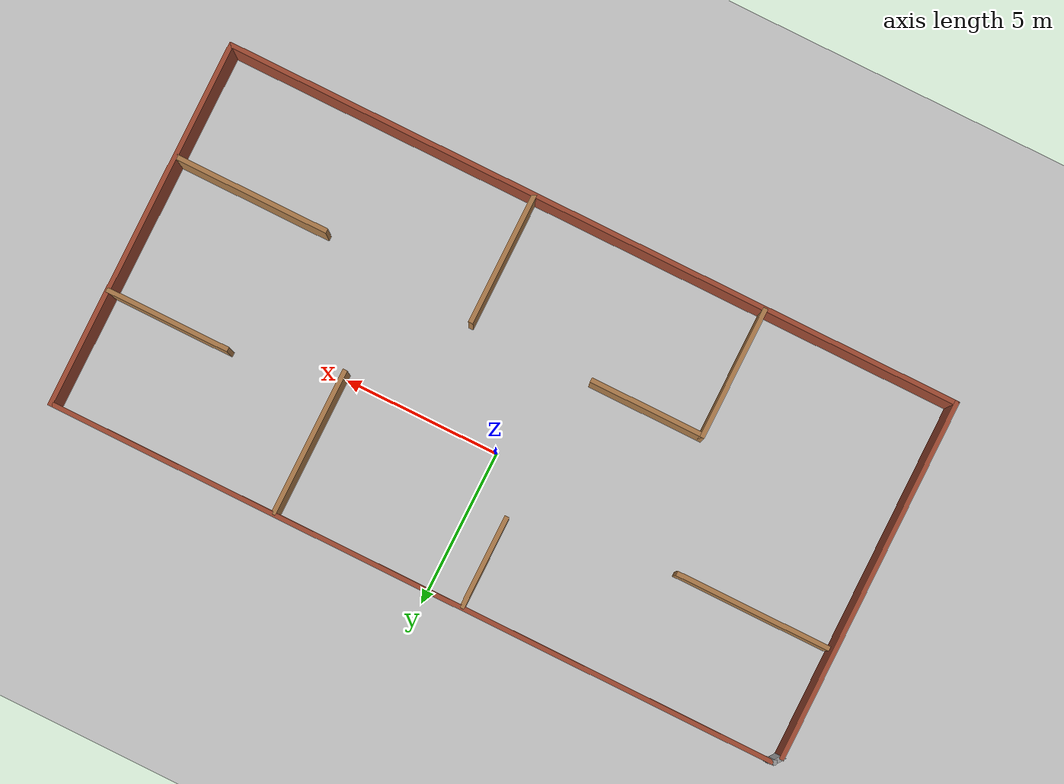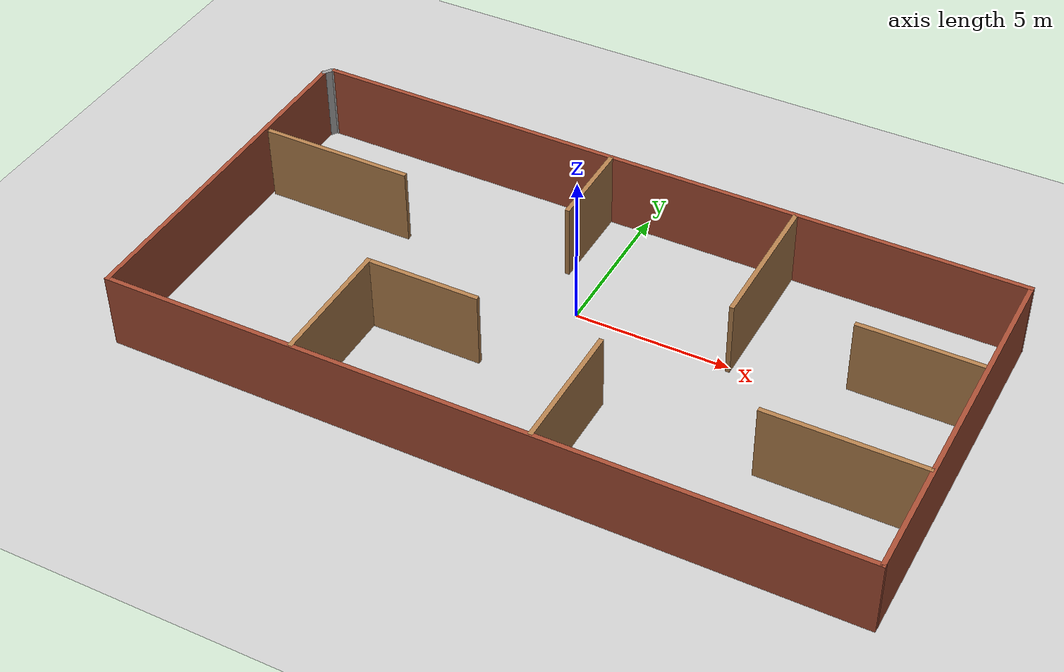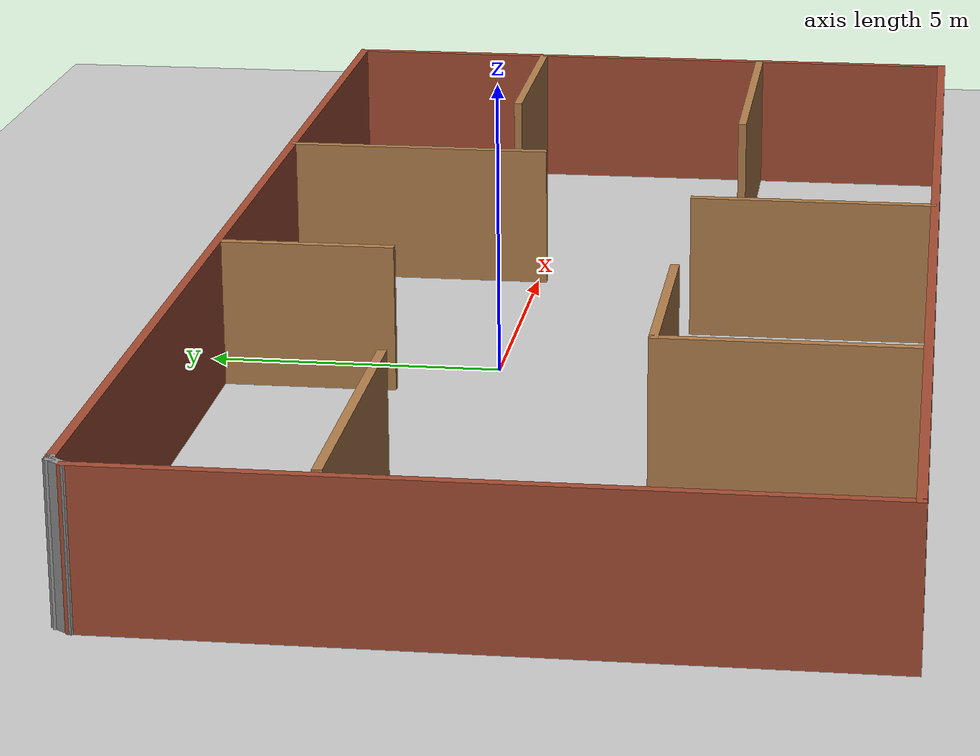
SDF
<sdf version="1.7">
 <world name="default">
  <light name="sun" type="directional">
   <pose>0 0 10 0 -0 0</pose>
   <diffuse>0.8 0.8 0.8 1</diffuse>
   <specular>0.2 0.2 0.2 1</specular>
   <attenuation>
    <range>1000</range>
    <constant>0.9</constant>
    <linear>0.01</linear>
    <quadratic>0.001</quadratic>
   </attenuation>
   <direction>-0.5 0.1 -0.9</direction>
   <spot><inner_angle>0</inner_angle><outer_angle>0</outer_angle><falloff>0</falloff></spot>
  </light>
  <model name="ground_plane">
   <static>1</static>
   <link name="link">
    <collision name="collision">
     <geometry><plane><normal>0 0 1</normal><size>100 100</size></plane></geometry>
     <surface>
      <contact><collide_bitmask>65535</collide_bitmask></contact>
      <friction><ode><mu>100</mu><mu2>50</mu2></ode></friction>
     </surface>
    </collision>
    <visual name="visual">
     <cast_shadows>0</cast_shadows>
     <geometry><plane><normal>0 0 1</normal><size>100 100</size></plane></geometry>
     <material>
      <script><uri>file://media/materials/scripts/gazebo.material</uri><name>Gazebo/Grey</name></script>
     </material>
    </visual>
   </link>
  </model>
  <gravity>0 0 -9.8</gravity>
  <magnetic_field>6e-06 2.3e-05 -4.2e-05</magnetic_field>
  <atmosphere type="adiabatic"/>
  <physics type="ode">
   <max_step_size>0.001</max_step_size>
   <real_time_factor>1</real_time_factor>
   <real_time_update_rate>1000</real_time_update_rate>
  </physics>
  <scene><ambient>0.4 0.4 0.4 1</ambient><background>0.7 0.7 0.7 1</background><shadows>1</shadows></scene>
  <spherical_coordinates>
   <surface_model>EARTH_WGS84</surface_model>
   <latitude_deg>0</latitude_deg>
   <longitude_deg>0</longitude_deg>
   <elevation>0</elevation>
   <heading_deg>0</heading_deg>
  </spherical_coordinates>
  <model name="map">
   <pose>0.404651 -1.341 0 0 -0 0</pose>
   <link name="Wall_10">
    <collision name="Wall_10_Collision">
     <geometry><box><size>5 0.15 2.5</size></box></geometry>
     <pose>0 0 1.25 0 -0 0</pose>
    </collision>
    <visual name="Wall_10_Visual">
     <pose>0 0 1.25 0 -0 0</pose>
     <geometry><box><size>5 0.15 2.5</size></box></geometry>
     <material>
      <script><uri>file://media/materials/scripts/gazebo.material</uri><name>Gazebo/Wood</name></script>
      <ambient>1 1 1 1</ambient>
     </material>
     <meta><layer>0</layer></meta>
    </visual>
    <pose>-9.25066 2.19944 0 0 -0 0</pose>
   </link>
   <link name="Wall_13">
    <collision name="Wall_13_Collision">
     <geometry><box><size>4.25 0.15 2.5</size></box></geometry>
     <pose>0 0 1.25 0 -0 0</pose>
    </collision>
    <visual name="Wall_13_Visual">
     <pose>0 0 1.25 0 -0 0</pose>
     <geometry><box><size>4.25 0.15 2.5</size></box></geometry>
     <material>
      <script><uri>file://media/materials/scripts/gazebo.material</uri><name>Gazebo/Wood</name></script>
      <ambient>1 1 1 1</ambient>
     </material>
     <meta><layer>0</layer></meta>
    </visual>
    <pose>-5.65299 -3.8264 0 0 -0 1.5708</pose>
   </link>
   <link name="Wall_15">
    <collision name="Wall_15_Collision">
     <geometry><box><size>5 0.15 2.5</size></box></geometry>
     <pose>0 0 1.25 0 -0 0</pose>
    </collision>
    <visual name="Wall_15_Visual">
     <pose>0 0 1.25 0 -0 0</pose>
     <geometry><box><size>5 0.15 2.5</size></box></geometry>
     <material>
      <script><uri>file://media/materials/scripts/gazebo.material</uri><name>Gazebo/Wood</name></script>
      <ambient>1 1 1 1</ambient>
     </material>
     <meta><layer>0</layer></meta>
    </visual>
    <pose>9.44249 -2.24911 0 0 -0 3.14159</pose>
   </link>
   <link name="Wall_17">
    <collision name="Wall_17_Collision">
     <geometry><box><size>4.25 0.15 2.5</size></box></geometry>
     <pose>0 0 1.25 0 -0 0</pose>
    </collision>
    <visual name="Wall_17_Visual">
     <pose>0 0 1.25 0 -0 0</pose>
     <geometry><box><size>4.25 0.15 2.5</size></box></geometry>
     <material>
      <script><uri>file://media/materials/scripts/gazebo.material</uri><name>Gazebo/Wood</name></script>
      <ambient>1 1 1 1</ambient>
     </material>
     <meta><layer>0</layer></meta>
    </visual>
    <pose>1.94378 -3.8264 0 0 -0 1.5708</pose>
   </link>
   <link name="Wall_19">
    <collision name="Wall_19_Collision">
     <geometry><box><size>3.75 0.15 2.5</size></box></geometry>
     <pose>0 0 1.25 0 -0 0</pose>
    </collision>
    <visual name="Wall_19_Visual">
     <pose>0 0 1.25 0 -0 0</pose>
     <geometry><box><size>3.75 0.15 2.5</size></box></geometry>
     <material>
      <script><uri>file://media/materials/scripts/gazebo.material</uri><name>Gazebo/Wood</name></script>
      <ambient>1 1 1 1</ambient>
     </material>
     <meta><layer>0</layer></meta>
    </visual>
    <pose>-3.85299 -1.7764 0 0 -0 0</pose>
   </link>
   <link name="Wall_21">
    <collision name="Wall_21_Collision">
     <geometry><box><size>3 0.15 2.5</size></box></geometry>
     <pose>0 0 1.25 0 -0 0</pose>
    </collision>
    <visual name="Wall_21_Visual">
     <pose>0 0 1.25 0 -0 0</pose>
     <geometry><box><size>3 0.15 2.5</size></box></geometry>
     <material>
      <script><uri>file://media/materials/scripts/gazebo.material</uri><name>Gazebo/Wood</name></script>
      <ambient>1 1 1 1</ambient>
     </material>
     <meta><layer>0</layer></meta>
    </visual>
    <pose>-1.55235 4.42718 0 0 -0 -1.5708</pose>
   </link>
   <link name="Wall_23">
    <collision name="Wall_23_Collision">
     <geometry><box><size>4 0.15 2.5</size></box></geometry>
     <pose>0 0 1.25 0 -0 0</pose>
    </collision>
    <visual name="Wall_23_Visual">
     <pose>0 0 1.25 0 -0 0</pose>
     <geometry><box><size>4 0.15 2.5</size></box></geometry>
     <material>
      <script><uri>file://media/materials/scripts/gazebo.material</uri><name>Gazebo/Wood</name></script>
      <ambient>1 1 1 1</ambient>
     </material>
     <meta><layer>0</layer></meta>
    </visual>
    <pose>9.98352 2.17392 0 0 -0 3.14159</pose>
   </link>
   <link name="Wall_26">
    <collision name="Wall_26_Collision">
     <geometry><box><size>4.75 0.15 2.5</size></box></geometry>
     <pose>0 0 1.25 0 -0 0</pose>
    </collision>
    <visual name="Wall_26_Visual">
     <pose>0 0 1.25 0 -0 0</pose>
     <geometry><box><size>4.75 0.15 2.5</size></box></geometry>
     <material>
      <script><uri>file://media/materials/scripts/gazebo.material</uri><name>Gazebo/Wood</name></script>
      <ambient>1 1 1 1</ambient>
     </material>
     <meta><layer>0</layer></meta>
    </visual>
    <pose>4.63026 3.55218 0 0 -0 -1.5708</pose>
   </link>
   <link name="Wall_3">
    <collision name="Wall_3_Collision">
     <geometry><box><size>11.75 0.15 2.5</size></box></geometry>
     <pose>0 0 1.25 0 -0 0</pose>
    </collision>
    <visual name="Wall_3_Visual">
     <pose>0 0 1.25 0 -0 0</pose>
     <geometry><box><size>11.75 0.15 2.5</size></box></geometry>
     <material>
      <script><uri>file://media/materials/scripts/gazebo.material</uri><name>Gazebo/Bricks</name></script>
      <ambient>1 1 1 1</ambient>
     </material>
     <meta><layer>0</layer></meta>
    </visual>
    <pose>-11.9104 -0.133428 0 0 -0 -1.5708</pose>
   </link>
   <link name="Wall_4">
    <collision name="Wall_4_Collision">
     <geometry><box><size>24 0.15 2.5</size></box></geometry>
     <pose>0 0 1.25 0 -0 0</pose>
    </collision>
    <visual name="Wall_4_Visual">
     <pose>0 0 1.25 0 -0 0</pose>
     <geometry><box><size>24 0.15 2.5</size></box></geometry>
     <material>
      <script><uri>file://media/materials/scripts/gazebo.material</uri><name>Gazebo/Bricks</name></script>
      <ambient>1 1 1 1</ambient>
     </material>
     <meta><layer>0</layer></meta>
    </visual>
    <pose>0.014626 -5.93343 0 0 -0 0</pose>
   </link>
   <link name="Wall_5">
    <collision name="Wall_5_Collision">
     <geometry><box><size>12 0.15 2.5</size></box></geometry>
     <pose>0 0 1.25 0 -0 0</pose>
    </collision>
    <visual name="Wall_5_Visual">
     <pose>0 0 1.25 0 -0 0</pose>
     <geometry><box><size>12 0.15 2.5</size></box></geometry>
     <material>
      <script><uri>file://media/materials/scripts/gazebo.material</uri><name>Gazebo/Bricks</name></script>
      <ambient>1 1 1 1</ambient>
     </material>
     <meta><layer>0</layer></meta>
    </visual>
    <pose>11.9396 -0.008428 0 0 -0 1.5708</pose>
   </link>
   <link name="Wall_6">
    <collision name="Wall_6_Collision">
     <geometry><box><size>23.75 0.15 2.5</size></box></geometry>
     <pose>0 0 1.25 0 -0 0</pose>
    </collision>
    <visual name="Wall_6_Visual">
     <pose>0 0 1.25 0 -0 0</pose>
     <geometry><box><size>23.75 0.15 2.5</size></box></geometry>
     <material>
      <script><uri>file://media/materials/scripts/gazebo.material</uri><name>Gazebo/Bricks</name></script>
      <ambient>1 1 1 1</ambient>
     </material>
     <meta><layer>0</layer></meta>
    </visual>
    <pose>0.139626 5.91657 0 0 -0 3.14159</pose>
   </link>
   <link name="Wall_7">
    <collision name="Wall_7_Collision">
     <geometry><box><size>0.25 0.15 2.5</size></box></geometry>
     <pose>0 0 1.25 0 -0 0</pose>
    </collision>
    <visual name="Wall_7_Visual">
     <pose>0 0 1.25 0 -0 0</pose>
     <geometry><box><size>0.25 0.15 2.5</size></box></geometry>
     <material>
      <script><uri>file://media/materials/scripts/gazebo.material</uri><name>Gazebo/Grey</name></script>
      <ambient>1 1 1 1</ambient>
     </material>
     <meta><layer>0</layer></meta>
    </visual>
    <pose>-11.7087 5.90363 0 0 -0 -2.87979</pose>
   </link>
   <link name="Wall_8">
    <collision name="Wall_8_Collision">
     <geometry><box><size>0.421593 0.15 2.5</size></box></geometry>
     <pose>0 0 1.25 0 -0 0</pose>
    </collision>
    <visual name="Wall_8_Visual">
     <pose>0 0 1.25 0 -0 0</pose>
     <geometry><box><size>0.421593 0.15 2.5</size></box></geometry>
     <material>
      <script><uri>file://media/materials/scripts/gazebo.material</uri><name>Gazebo/Grey</name></script>
      <ambient>1 1 1 1</ambient>
     </material>
     <meta><layer>0</layer></meta>
    </visual>
    <pose>-11.8337 5.77863 0 0 -0 -2.17104</pose>
   </link>
   <static>1</static>
  </model>
 </world>
</sdf>
